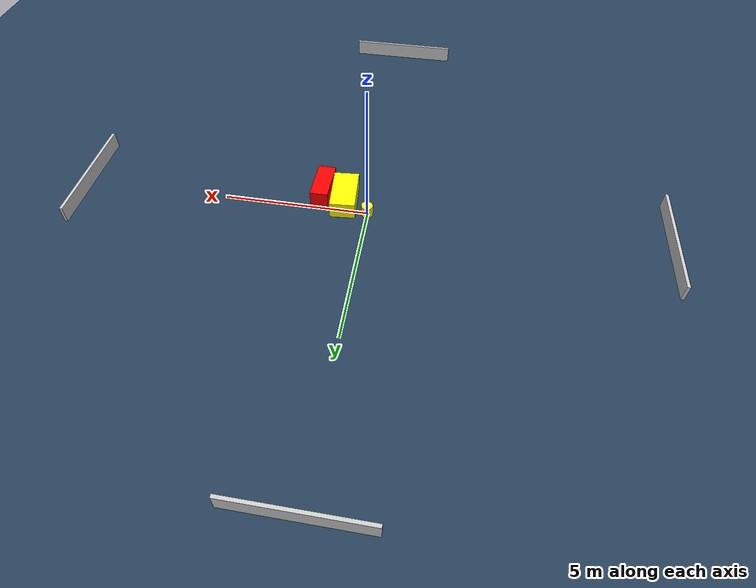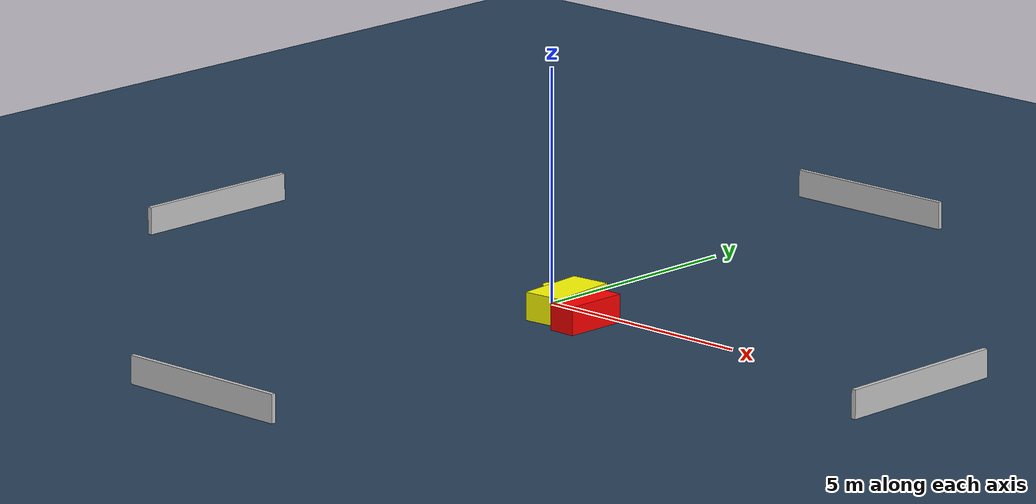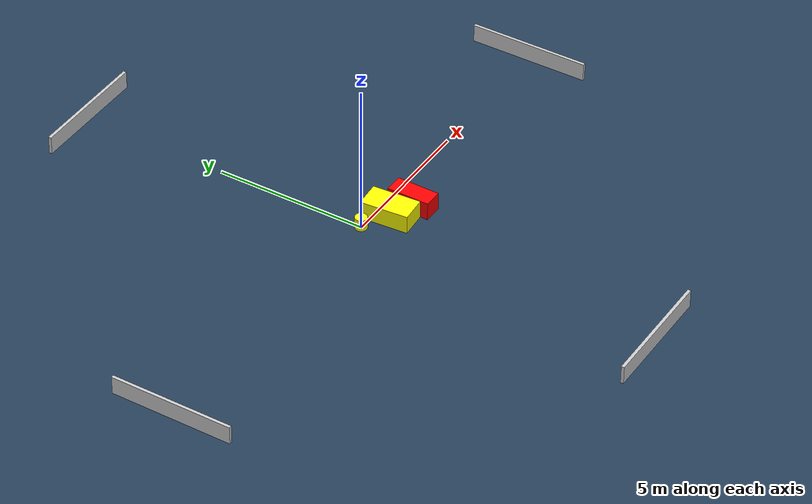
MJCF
<?xml version="1.0" ?>
<mujoco model="generated_environment">
  <option timestep="0.01" integrator="RK4" cone="elliptic"/>
  <default>
    <geom density="1"/>
  </default>
  <asset>
    <texture builtin="gradient" height="3072" name="skybox" rgb1="0.3 0.5 0.7" rgb2="0 0 0" type="skybox" width="512"/>
    <texture builtin="checker" height="300" name="groundplane" rgb1="0.2 0.3 0.4" rgb2="0.1 0.2 0.3" type="2d" width="300"/>
    <material name="groundplane" reflectance="0.2" texrepeat="5 5" texture="groundplane"/>
  </asset>
  <worldbody>
    <light dir="0 0 -1" directional="true" pos="0 0 1.5"/>
    <geom condim="3" friction="0.5 0.005 0.001" material="groundplane" name="floor" pos="0 0 0" size="0 0 0.05" type="plane"/>
    <body name="walls">
      <geom name="wall_1" condim="4" pos="-10.0 0.0 0.3" rgba="0.800000011920929 0.800000011920929 0.800000011920929 1.0" size="0.05 2.0 0.3" type="box"/>
      <geom name="wall_2" condim="4" pos="10.0 0.0 0.3" rgba="0.800000011920929 0.800000011920929 0.800000011920929 1.0" size="0.05 2.0 0.3" type="box"/>
      <geom name="wall_3" condim="4" pos="0.0 -10.0 0.3" rgba="0.800000011920929 0.800000011920929 0.800000011920929 1.0" size="2.0 0.05 0.3" type="box"/>
      <geom name="wall_4" condim="4" pos="0.0 10.0 0.3" rgba="0.800000011920929 0.800000011920929 0.800000011920929 1.0" size="2.0 0.05 0.3" type="box"/>
    </body>
    <body name="robot">
      <joint name="joint_x" type="slide" pos="0 0 0" axis="1 0 0"/>
      <joint name="joint_y" type="slide" pos="0 0 0" axis="0 1 0"/>
      <geom name="robot" type="cylinder" pos="0.0 0.0 0.2" size="0.2 0.2 0.0" mass="5.0" friction="1.0 0.005 0.0001" condim="4" rgba="1.0 1.0 0.0 1.0"/>
    </body>
    <body name="obstacle_1_movable">
      <geom name="obstacle_1_movable" condim="4" pos="0.8687228831874131 -0.4840188903102373 0.3" euler="0 0 274.38588968169057" friction="0.0 0.005 0.001" rgba="1.0 1.0 0.0 1.0" size="0.7917264199390386 0.43448489077073005 0.3" type="box" mass="0.1"/>
      <joint type="free"/>
    </body>
    <body name="obstacle_2_static">
      <geom name="obstacle_2_static" condim="4" pos="1.6832183927747644 -0.7881090272871742 0.3" euler="0 0 269.13511193428207" friction="0.0 0.005 0.001" rgba="1.0 0.0 0.0 1.0" size="0.7042387230498406 0.30711079937983515 0.3" type="box"/>
    </body>
  </worldbody>
  <actuator>
    <motor name="actuator_x" joint="joint_x" gear="1" ctrlrange="-1 1"/>
    <motor name="actuator_y" joint="joint_y" gear="1" ctrlrange="-1 1"/>
  </actuator>
</mujoco>
